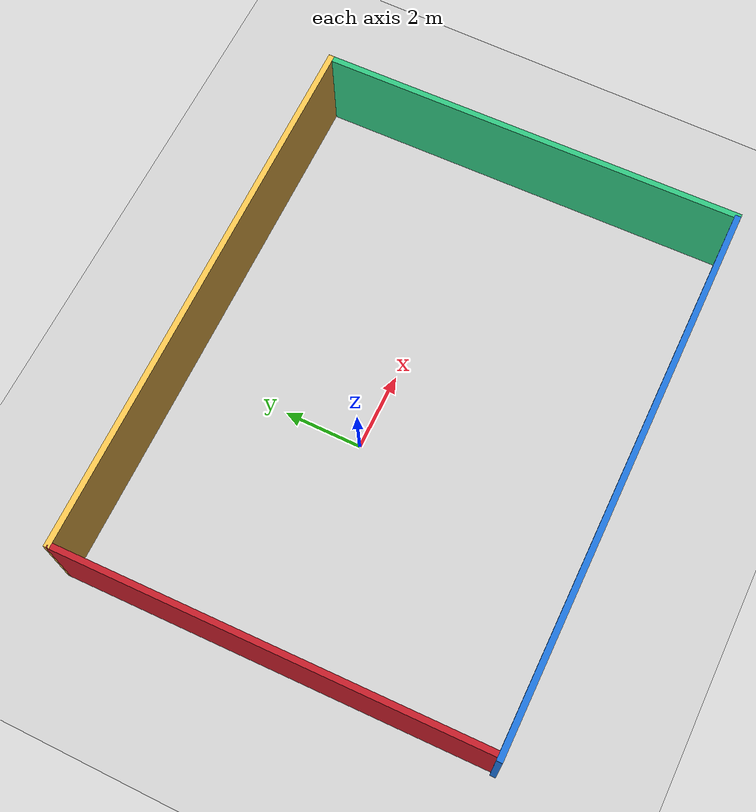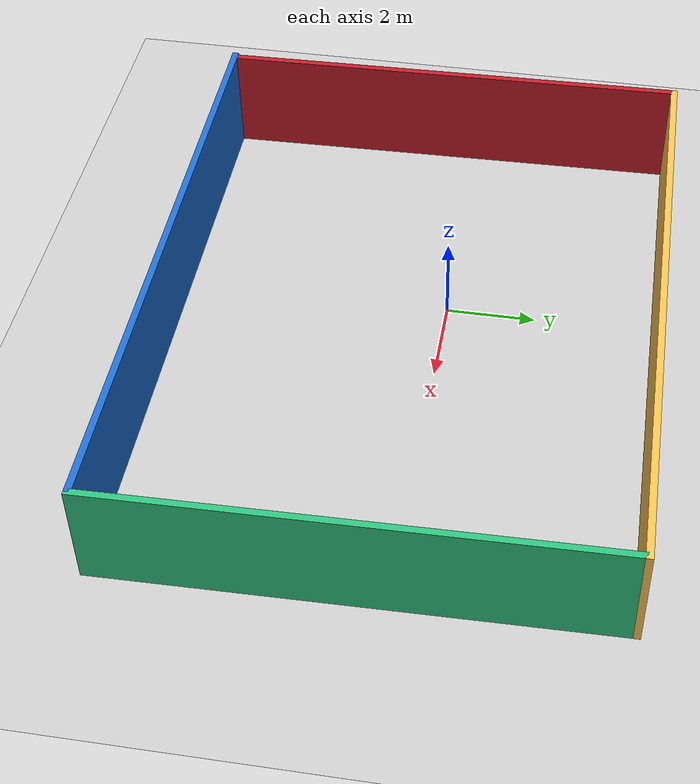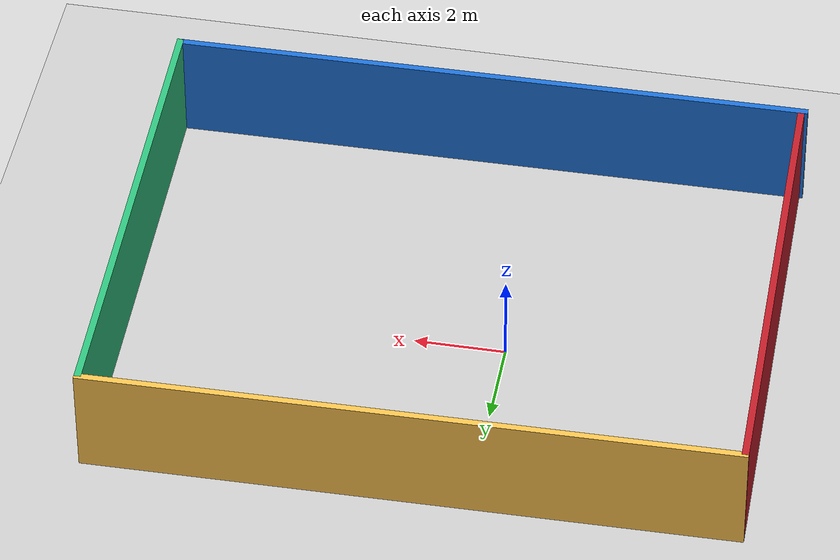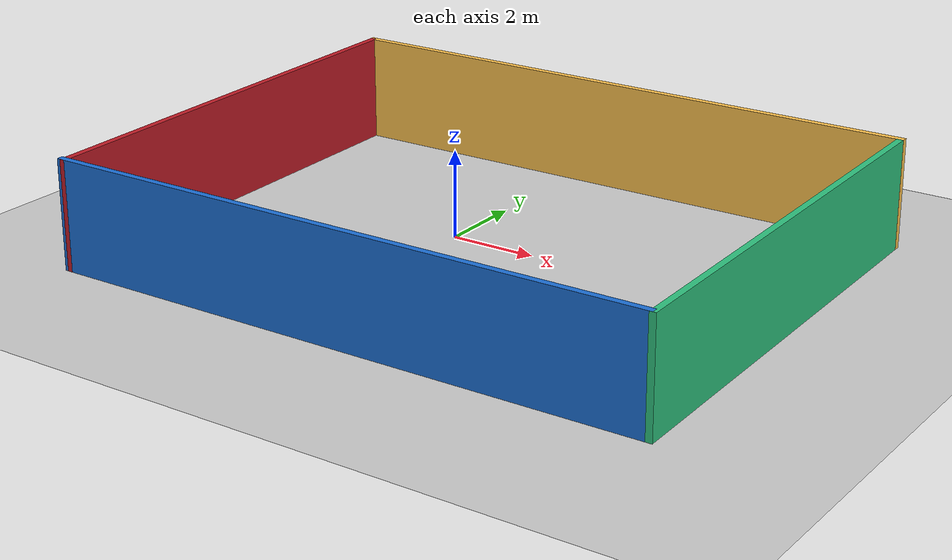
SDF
<sdf version="1.7">
 <world name="default">
  <light name="sun" type="directional">
   <pose>0 0 10 0 -0 0</pose>
   <diffuse>0.8 0.8 0.8 1</diffuse>
   <specular>0.2 0.2 0.2 1</specular>
   <attenuation>
    <range>1000</range>
    <constant>0.9</constant>
    <linear>0.01</linear>
    <quadratic>0.001</quadratic>
   </attenuation>
   <direction>-0.5 0.1 -0.9</direction>
   <spot><inner_angle>0</inner_angle><outer_angle>0</outer_angle><falloff>0</falloff></spot>
  </light>
  <model name="ground_plane">
   <static>1</static>
   <link name="link">
    <collision name="collision">
     <geometry><plane><normal>0 0 1</normal><size>100 100</size></plane></geometry>
     <surface><friction><ode><mu>100</mu><mu2>50</mu2></ode></friction></surface>
    </collision>
    <visual name="visual">
     <cast_shadows>0</cast_shadows>
     <geometry><plane><normal>0 0 1</normal><size>100 100</size></plane></geometry>
     <material>
      <script><uri>file://media/materials/scripts/gazebo.material</uri><name>Gazebo/Grey</name></script>
     </material>
    </visual>
   </link>
  </model>
  <gravity>0 0 -9.8</gravity>
  <magnetic_field>6e-06 2.3e-05 -4.2e-05</magnetic_field>
  <atmosphere type="adiabatic"/>
  <physics type="ode">
   <max_step_size>0.001</max_step_size>
   <real_time_factor>1</real_time_factor>
   <real_time_update_rate>1000</real_time_update_rate>
  </physics>
  <scene><ambient>0.4 0.4 0.4 1</ambient><background>0.7 0.7 0.7 1</background><shadows>1</shadows></scene>
  <audio><device>default</device></audio>
  <spherical_coordinates>
   <surface_model>EARTH_WGS84</surface_model>
   <latitude_deg>0</latitude_deg>
   <longitude_deg>0</longitude_deg>
   <elevation>0</elevation>
   <heading_deg>0</heading_deg>
  </spherical_coordinates>
  <model name="square_coloured">
   <pose>1.33812 -0.648855 0 0 -0 0</pose>
   <link name="Wall_0">
    <collision name="Wall_0_Collision">
     <geometry><box><size>10.8512 0.15 2.5</size></box></geometry>
     <pose>0 0 1.25 0 -0 0</pose>
    </collision>
    <visual name="Wall_0_Visual">
     <pose>0 0 1.25 0 -0 0</pose>
     <geometry><box><size>10.8512 0.15 2.5</size></box></geometry>
     <material>
      <script><uri>file://media/materials/scripts/gazebo.material</uri><name>Gazebo/Grey</name></script>
      <ambient>0.752941 0.109804 0.156863 1</ambient>
     </material>
     <meta><layer>0</layer></meta>
    </visual>
    <pose>-6.97665 -0.122236 0 0 -0 -1.55096</pose>
   </link>
   <link name="Wall_2">
    <collision name="Wall_2_Collision">
     <geometry><box><size>14.1044 0.15 2.5</size></box></geometry>
     <pose>0 0 1.25 0 -0 0</pose>
    </collision>
    <visual name="Wall_2_Visual">
     <pose>0 0 1.25 0 -0 0</pose>
     <geometry><box><size>14.1044 0.15 2.5</size></box></geometry>
     <material>
      <script><uri>file://media/materials/scripts/gazebo.material</uri><name>Gazebo/Grey</name></script>
      <ambient>1 0.764706 0.305882 1</ambient>
     </material>
     <meta><layer>0</layer></meta>
    </visual>
    <pose>-0.106131 5.38519 0 0 -0 0.012488</pose>
   </link>
   <link name="Wall_5">
    <collision name="Wall_5_Collision">
     <geometry><box><size>10.9219 0.15 2.5</size></box></geometry>
     <pose>0 0 1.25 0 -0 0</pose>
    </collision>
    <visual name="Wall_5_Visual">
     <pose>0 0 1.25 0 -0 0</pose>
     <geometry><box><size>10.9219 0.15 2.5</size></box></geometry>
     <material>
      <script><uri>file://media/materials/scripts/gazebo.material</uri><name>Gazebo/Grey</name></script>
      <ambient>0.180392 0.760784 0.494118 1</ambient>
     </material>
     <meta><layer>0</layer></meta>
    </visual>
    <pose>6.97666 0.016643 0 0 -0 -1.55109</pose>
   </link>
   <link name="Wall_6">
    <collision name="Wall_6_Collision">
     <geometry><box><size>14.1037 0.15 2.5</size></box></geometry>
     <pose>0 0 1.25 0 -0 0</pose>
    </collision>
    <visual name="Wall_6_Visual">
     <pose>0 0 1.25 0 -0 0</pose>
     <geometry><box><size>14.1037 0.15 2.5</size></box></geometry>
     <material>
      <script><uri>file://media/materials/scripts/gazebo.material</uri><name>Gazebo/Grey</name></script>
      <ambient>0.109804 0.443137 0.847059 1</ambient>
     </material>
     <meta><layer>0</layer></meta>
    </visual>
    <pose>0.035383 -5.42003 0 0 -0 -3.13417</pose>
   </link>
   <static>1</static>
  </model>
 </world>
</sdf>
